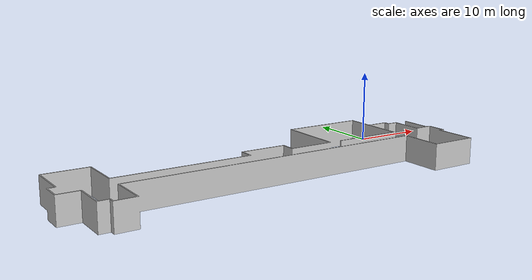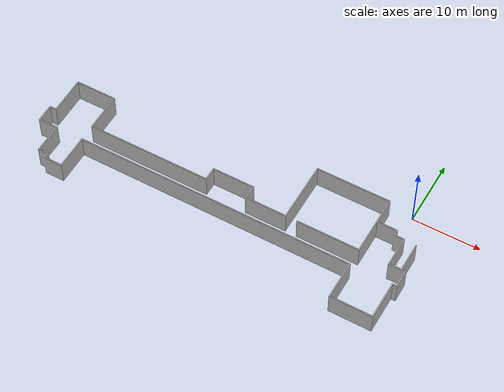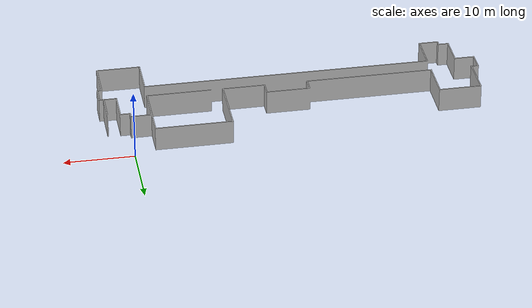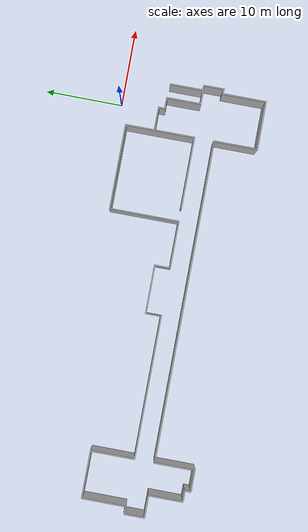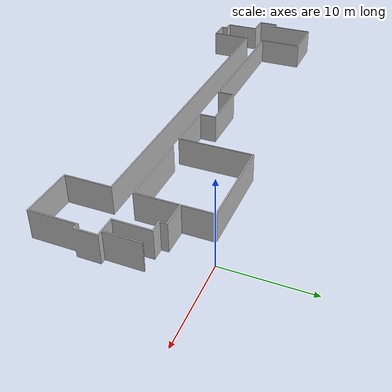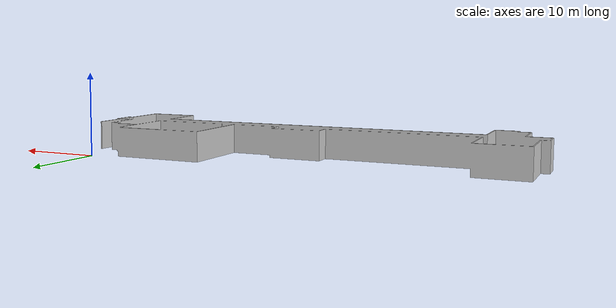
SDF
<?xml version="1.0" ?>
<sdf version="1.6">
  <model name="abcd">
    <static>true</static> <!-- 'false' agar bisa bergerak, 'true' jika objek diam seperti gedung -->
    <link name="link_utama">

      <!-- Properti Tumbukan (Collision) -->
      <collision name="collision">
        <geometry>
          <mesh>
            <uri>model://labc_1door/meshes/LABC_2Door.dae</uri>
            <scale>1 1 1</scale> <!-- Ubah skala jika perlu, format: "X Y Z" -->
          </mesh>
        </geometry>
      </collision>

      <!-- Properti Visual -->
      <visual name="visual">
        <geometry>
          <mesh>
            <uri>model://labc_1door/meshes/LABC_2Door.dae</uri>
            <scale>1 1 1</scale> <!-- Pastikan skala sama dengan collision -->
          </mesh>
        </geometry>
      </visual>

    </link>
  </model>
</sdf>
